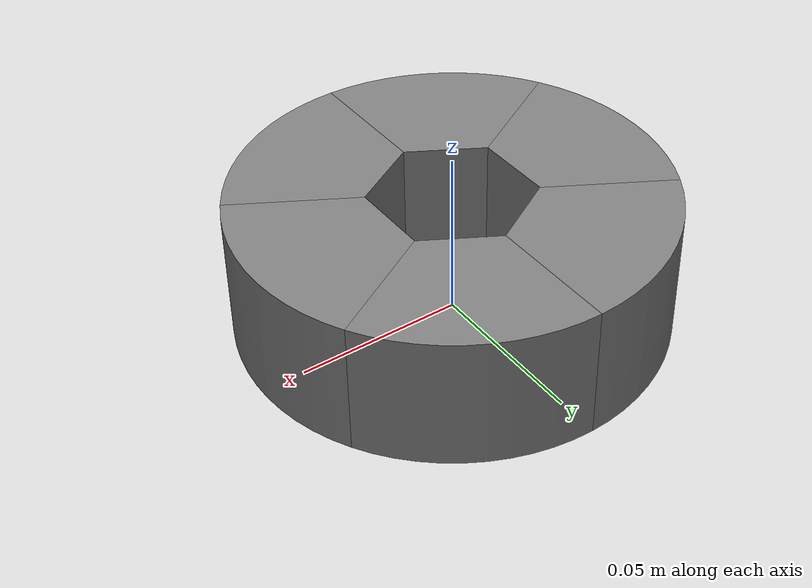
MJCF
<mujoco model="hole">
  <compiler angle="radian"/>
  <default>
    <default class="visual">
      <geom group="0" type="mesh" contype="0" conaffinity="0"/>
    </default>
    <default class="collision">
      <geom group="0" type="mesh" solimp="0.9 0.95 0.001 0.5 2" solref=".004 1" condim="6"/>
    </default>
  </default>
  <asset>
    <texture file="../textures/red-wood.png" type="cube" name="red-wood" />
    <material name="plate_mat" texture="red-wood" texrepeat="3 3" specular="0.4" shininess="0.1" />
    <mesh file="hexagon-hole/round_hexagon_hole_0.obj" name="round_hexagon_hole_0"/>
    <mesh file="hexagon-hole/round_hexagon_hole_1.obj" name="round_hexagon_hole_1"/>
    <mesh file="hexagon-hole/round_hexagon_hole_2.obj" name="round_hexagon_hole_2"/>
    <mesh file="hexagon-hole/round_hexagon_hole_3.obj" name="round_hexagon_hole_3"/>
    <mesh file="hexagon-hole/round_hexagon_hole_4.obj" name="round_hexagon_hole_4"/>
    <mesh file="hexagon-hole/round_hexagon_hole_5.obj" name="round_hexagon_hole_5"/>

    <mesh file="hexagon-hole/hexagon_hole_0.obj" name="hexagon_hole_0"/>
    <mesh file="hexagon-hole/hexagon_hole_1.obj" name="hexagon_hole_1"/>
    <mesh file="hexagon-hole/hexagon_hole_2.obj" name="hexagon_hole_2"/>
    <mesh file="hexagon-hole/hexagon_hole_3.obj" name="hexagon_hole_3"/>
    <mesh file="hexagon-hole/hexagon_hole_4.obj" name="hexagon_hole_4"/>
    <mesh file="hexagon-hole/hexagon_hole_5.obj" name="hexagon_hole_5"/>
    <mesh file="hexagon-hole/hexagon_hole_6.obj" name="hexagon_hole_6"/>
    <mesh file="hexagon-hole/hexagon_hole_7.obj" name="hexagon_hole_7"/>
  </asset>

  <!-- Always initialize the free camera to point at the origin. -->
  <worldbody>
    <body>
      <body name="object">
        <site rgba="0 0 0 0" size="0.005" pos="0 0 0.0" name="center"/>
        <site pos="0 0 0" size="0.005 .1" quat="0.707105  0 0.707108 0 " rgba="1 0 0 0" type="cylinder" group="1"/>
        <site pos="0 0 0" size="0.005 .1" quat="0.707105 0.707108 0 0" rgba="0 1 0 0" type="cylinder" group="1"/>
        <site pos="0 0 0" size="0.005 .1" quat="1 0 0 0" rgba="0 0 1 0" type="cylinder" group="1"/>
        <geom mesh="round_hexagon_hole_0" class="collision"/>
        <geom mesh="round_hexagon_hole_1" class="collision"/>
        <geom mesh="round_hexagon_hole_2" class="collision"/>
        <geom mesh="round_hexagon_hole_3" class="collision"/>
        <geom mesh="round_hexagon_hole_4" class="collision"/>
        <geom mesh="round_hexagon_hole_5" class="collision"/>
      </body>
    </body>
  </worldbody>
</mujoco>
